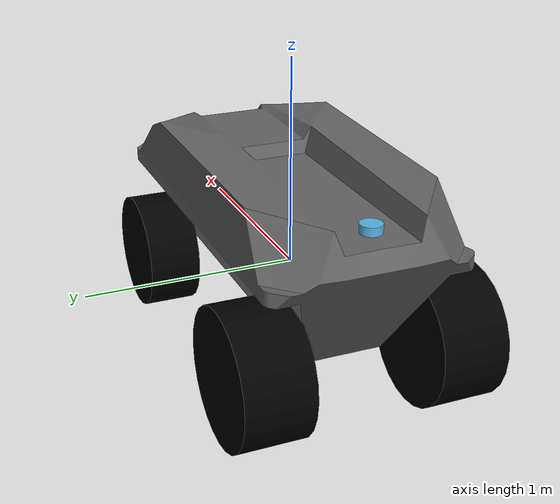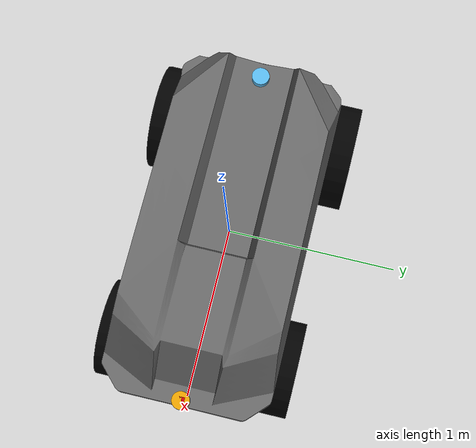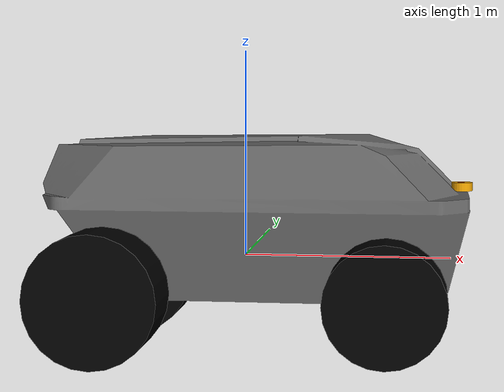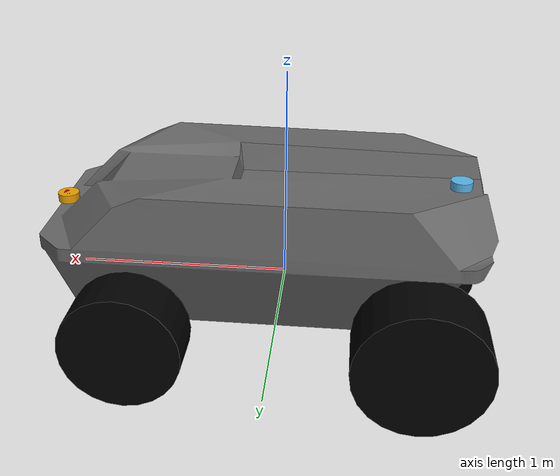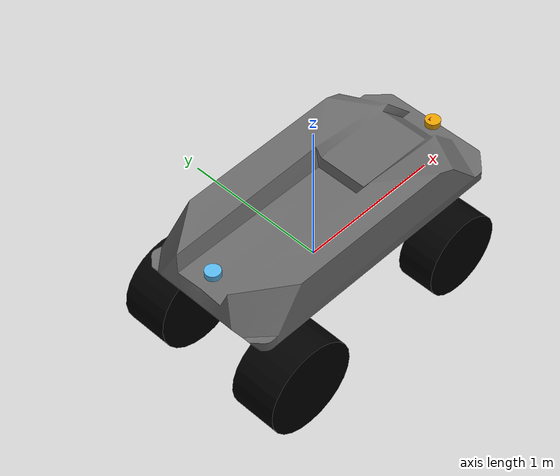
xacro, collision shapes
<?xml version="1.0"?>
<robot xmlns:xacro="http://www.ros.org/wiki/xacro" name="little_pig">

    <!-- Degree-to-radian conversions -->
    <xacro:property name="degrees_30" value="0.523598776"/>
    <xacro:property name="degrees_45" value="0.785398163"/>
    <xacro:property name="degrees_90" value="1.57079633"/>
    <xacro:property name="degrees_180" value="3.14159265"/>

    <!-- Included macros -->
    <xacro:include filename="$(find little_pig_description)/xacro/params/color_properties.xacro"/>
    <xacro:include filename="$(find little_pig_description)/xacro/params/characteristics.xacro"/>

    <xacro:include filename="$(find little_pig_description)/xacro/macros/_steering_macro.urdf.xacro" />
    <xacro:include filename="$(find little_pig_description)/xacro/macros/_front_wheel.urdf.xacro" />
    <xacro:include filename="$(find little_pig_description)/xacro/macros/_rear_wheel.urdf.xacro" />

    <!-- Using two laser files due to namespace issues -->
    <xacro:include filename="$(find little_pig_description)/xacro/macros/_front_laser.urdf.xacro" />
    <xacro:include filename="$(find little_pig_description)/xacro/macros/_back_laser.urdf.xacro" />
    <xacro:include filename="$(find little_pig_description)/xacro/macros/_imu.urdf.xacro" />
    <xacro:include filename="$(find little_pig_description)/xacro/macros/_camera.urdf.xacro" />

    <!-- Inertia Generator -->
    <xacro:macro name="default_inertial" params="mass">
        <inertial>
            <mass value="${mass}" />
            <inertia ixx="1.0" ixy="0.0" ixz="0.0" iyy="1.0" iyz="0.0" izz="1.0" />
        </inertial>
    </xacro:macro>

    <link name="base_link" />

    <link name="chassis">
        <visual>
            <geometry>
                <mesh filename="package://little_pig_description/meshes/little_pig_body.stl" scale="0.0254 0.0254 0.0254"/>
            </geometry>
            <origin rpy="0 0.0 1.57075" xyz="0 0 0.0"/>
            <material name="light_black"/>
        </visual>
        <collision>
            <origin xyz="0.0 0.0 0.0" rpy="0.0 0.0 1.57075"/>
            <geometry>
                <mesh filename="package://little_pig_description/meshes/little_pig_body.stl" scale="0.0254 0.0254 0.0254"/>
            </geometry>
        </collision>
        <xacro:default_inertial mass="${body_mass}"/>
    </link>

    <joint name="base_joint" type="fixed">
        <parent link="base_link"/>
        <child link="chassis"/>
        <origin xyz="0.0 0.0 0.0" rpy="0 0 0"/>
    </joint>

    <!-- Call macros to build components -->
    <xacro:steering_component prefix="left" reflect="1" />
    <xacro:steering_component prefix="right" reflect="-1" />

    <xacro:front_wheel prefix="left" reflect="1" />
    <xacro:front_wheel prefix="right" reflect="-1" />

    <xacro:rear_wheel prefix="left" reflect="1" />
    <xacro:rear_wheel prefix="right" reflect="-1" />

    <xacro:front_laser position="${front_laser_position}" rotate="0" />
    <xacro:back_laser position="${back_laser_position}" rotate="${degrees_180}" />
    <xacro:imu position="${imu_position}"/>
    <xacro:camera1 position="${camera_position}"/>

    <!-- Gazebo plugin for ROS Control -->
    <gazebo>
        <plugin name="gazebo_ros_control" filename="libgazebo_ros_control.so">
            <robotSimType>gazebo_ros_control/AckermannRobotHWSim</robotSimType>
        </plugin>

        <plugin name="gps_plugin" filename="libhector_gazebo_ros_gps.so">
            <alwaysOn>1</alwaysOn>
            <updateRate>40.0</updateRate>
            <frameId>base_link</frameId> <!-- Defaults to world? don't put in a "/"-->
            <bodyName>chassis</bodyName>
            <topicName>fix</topicName>
            <velocityTopicName>fix_vel</velocityTopicName>
            <drift>0.0001 0.0001 0.0001</drift>
            <referenceLatitude>37.634047</referenceLatitude>
            <referenceLongitude>-97.269368</referenceLongitude>
            <referenceHeading>0</referenceHeading>
            <referenceAltitude>0</referenceAltitude>
        </plugin>

    </gazebo>

</robot>

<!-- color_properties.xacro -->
<robot name="color_properties"
    xmlns:xacro="http://ros.org/wiki/xacro">

    <!-- Init color -->
    <material name="black">
        <color rgba="0.0 0.0 0.0 1.0"/>
    </material>

    <material name="dark">
        <color rgba="0.3 0.3 0.3 1.0"/>
    </material>
    <material name="light_black">
        <color rgba="0.4 0.4 0.4 1.0"/>
    </material>

    <material name="blue">
        <color rgba="0.0 0.0 0.8 1.0"/>
    </material>

    <material name="green">
        <color rgba="0.0 0.8 0.0 1.0"/>
    </material>

    <material name="grey">
        <color rgba="0.5 0.5 0.5 1.0"/>
    </material>

    <material name="orange">
        <color rgba="${255/255} ${108/255} ${10/255} 1.0"/>
    </material>

    <material name="brown">
        <color rgba="${222/255} ${207/255} ${195/255} 1.0"/>
    </material>

    <material name="red">
        <color rgba="0.8 0.0 0.0 1.0"/>
    </material>

    <material name="white">
        <color rgba="1.0 1.0 1.0 1.0"/>
    </material>
</robot>

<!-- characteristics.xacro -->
<robot name="characteristics"
    xmlns:xacro="http://ros.org/wiki/xacro">

    <!-- Basic Geometry of Body -->
    <xacro:property name="body_length" value="1.91" />
    <xacro:property name="body_width" value="0.680618" />
    <xacro:property name="body_height" value="1.065022" />
    <xacro:property name="body_mass" value="20.3"/>
    <!-- Front Wheel Properties -->
    <xacro:property name="front_wheel_width" value=".254" />
    <xacro:property name="front_wheel_diameter" value="0.572" />
    <xacro:property name="front_wheel_mass" value="20"/>

    <!-- Steering Link Properties -->
    <xacro:property name="steering_width" value="${front_wheel_width/4}" />
    <xacro:property name="steering_diameter" value="${front_wheel_diameter/5}" />
    <xacro:property name="steering_mass" value="2"/>

    <!-- Rear Wheel Properties -->
    <xacro:property name="rear_wheel_width" value="${front_wheel_width+steering_width}" />
    <xacro:property name="rear_wheel_diameter" value="0.635" />
    <xacro:property name="rear_wheel_mass" value="22.8"/>

    <!-- Steering Characteristics -->
    <!-- units of rad/s -->
    <xacro:property name="steering_speed" value="1.0472"/>
    <!-- units of rad, used to be 0.523 -->
    <xacro:property name="steering_max_angle" value="${degrees_30}"/>
    <!-- units of rad, used to be 0.523 -->
    <xacro:property name="steering_min_angle" value="-${degrees_30}"/>

    <xacro:property name="traverse_max_speed" value="4.785"/> <!-- units of m/s 4.785-->

    <!-- Module Properties (Positions relative to chassis) -->
    <xacro:property name="front_laser_position" value="1.05 0.0 0.35" />
    <xacro:property name="back_laser_position" value="-0.8 0.0 0.5" />
    <xacro:property name="imu_position" value="0 0 0.19"/>
    <xacro:property name="camera_position" value="1.05 0.0 0.35"/>

</robot>

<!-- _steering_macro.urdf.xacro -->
<robot name="steering_component"
    xmlns:xacro="http://ros.org/wiki/xacro">

    <xacro:macro name="steering_component" params="prefix reflect">

        <link name="${prefix}_steer_link">
            <visual>
                <geometry>
                    <cylinder radius="0.05" length="0.01"/>
                </geometry>
                <origin rpy="1.57075 0.0 0.0" xyz="0 0 0.0"/>
            </visual>
            <collision>
                <geometry>
                    <cylinder radius="0.05" length="0.01"/>
                </geometry>
                <origin rpy="1.57075 0.0 0.0" xyz="0 0 0.0"/>
            </collision>
            <xacro:default_inertial mass="${steering_mass}"/>
        </link>

        <joint name="${prefix}_steer_joint" type="revolute">
            <parent link="chassis"/>
            <child link="${prefix}_steer_link"/>
            <origin xyz="0.7 ${0.45 * reflect} -0.15" rpy="0.0 0.0 0.0"/>
            <axis xyz="0.0 0.0 0.1"/>
            <limit lower="${steering_min_angle}" upper="${steering_max_angle}" effort="30.00" velocity="${steering_speed}"/>
        </joint>

        <transmission name="${prefix}_steer_link_trans">
            <type>transmission_interface/SimpleTransmission</type>

            <joint name="${prefix}_steer_joint">
                <hardwareInterface>hardware_interface/PositionJointInterface</hardwareInterface>
            </joint>

            <actuator name="${prefix}_steer_link_motor">
                <hardwareInterface>hardware_interface/PositionJointInterface</hardwareInterface>
                <mechanicalReduction>1</mechanicalReduction>
            </actuator>
        </transmission>

    </xacro:macro>

</robot>

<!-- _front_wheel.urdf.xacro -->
<robot name="front_wheel"
    xmlns:xacro="http://ros.org/wiki/xacro">

    <xacro:macro name="front_wheel" params="prefix reflect">

        <link name="${prefix}_front_wheel">
            <visual>
                <geometry>
                    <mesh filename="package://little_pig_description/meshes/little_pig_wheel.stl" scale="0.0254 0.0254 0.0254"/>
                </geometry>
                <origin rpy="0.0 0.0 ${degrees_90 * reflect}" xyz="0 0 0.0"/>
                <material name="black"/>
            </visual>
            <collision>
                <origin xyz="0.0 0.0 0.0" rpy="${degrees_90 * reflect} 0.0 0.0"/>
                <geometry>
                    <cylinder radius="${front_wheel_diameter/2}" length="${front_wheel_width}"/>
                </geometry>
                <surface>
                    <friction>
                        <torsional>
                            <coefficient>2.0</coefficient>
                            <surface_radius>.3025</surface_radius>
                            <use_patch_radius>false</use_patch_radius>
                            <ode>
                                <slip>0.0</slip>
                            </ode>
                        </torsional>

                        <ode>
                            <mu>70000.00</mu>
                            <mu2>70000.00</mu2>
                            <fdir1>1.00000 0.00000 0.00000</fdir1>
                            <slip1>0.00000</slip1>
                            <slip2>0.00000</slip2>
                        </ode>
                    </friction>

                    <contact>
                        <ode>
                            <min_depth>0.4025</min_depth>
                        </ode>
                    </contact>
                </surface>
            </collision>
            <xacro:default_inertial mass="${front_wheel_mass}"/>
        </link>

        <joint name="${prefix}_front_wheel_joint" type="continuous">
            <parent link="${prefix}_steer_link"/>
            <child link="${prefix}_front_wheel"/>
            <origin xyz="0.0 0.0 0.0" rpy="0.0 0.0 0.0"/>
            <axis xyz="0.0 0.1 0.0"/>
            <limit effort="30.00" velocity="${traverse_max_speed * 2 / front_wheel_diameter}"/> <!-- units of rad/s -->
        </joint>

        <transmission name="${prefix}_front_wheel_trans">
            <type>transmission_interface/SimpleTransmission</type>

            <joint name="${prefix}_front_wheel_joint">
                <hardwareInterface>hardware_interface/VelocityJointInterface</hardwareInterface>
            </joint>

            <actuator name="${prefix}_front_wheel_motor">
                <hardwareInterface>hardware_interface/VelocityJointInterface</hardwareInterface>
                <mechanicalReduction>1</mechanicalReduction>
            </actuator>
        </transmission>

    </xacro:macro>

</robot>

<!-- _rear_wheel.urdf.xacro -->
<robot name="rear_wheel"
    xmlns:xacro="http://ros.org/wiki/xacro">

    <xacro:macro name="rear_wheel" params="prefix reflect">

        <link name="${prefix}_rear_wheel">
            <visual>
                <geometry>
                    <mesh filename="package://little_pig_description/meshes/little_pig_wheel.stl" scale="0.0254 0.0254 0.0254"/>
                </geometry>
                <origin rpy="0.0 0.0 ${degrees_90 * reflect}" xyz="0 0 0.0"/>
                <material name="black"/>
            </visual>
            <collision>
                <origin xyz="0.0 0.0 0.0" rpy="${degrees_90 * reflect} 0.0 0.0"/>
                <geometry>
                    <cylinder radius="${rear_wheel_diameter/2}" length="${rear_wheel_width}"/>
                </geometry>
            </collision>
            <surface>
                <contact>
                    <ode>
                        <min_depth>0.01</min_depth>
                    </ode>
                </contact>

                <friction>
                    <ode>
                        <mu>1</mu>
                        <mu2>1</mu2>
                        <fdir1>1.0 0 0</fdir1>
                    </ode>
                </friction>
            </surface>
            <xacro:default_inertial mass="${rear_wheel_mass}"/>
        </link>

        <joint name="${prefix}_rear_wheel_joint" type="continuous">
            <parent link="chassis"/>
            <child link="${prefix}_rear_wheel"/>
            <origin xyz="-0.65 ${0.45 * reflect} -0.15" rpy="0.0 0.0 0.0"/>
            <axis xyz="0.0 0.1 0.0"/>
        </joint>

        <transmission name="${prefix}_rear_wheel_trans">
            <type>transmission_interface/SimpleTransmission</type>

            <joint name="${prefix}_rear_wheel_joint">
                <!-- rolling axle -->
                <hardwareInterface>hardware_interface/EffortJointInterface</hardwareInterface>
            </joint>

            <actuator name="${prefix}_rear_wheel_motor">
                <!-- rolling axle -->
                <hardwareInterface>hardware_interface/EffortJointInterface</hardwareInterface>
                <mechanicalReduction>1</mechanicalReduction>
            </actuator>
        </transmission>

    </xacro:macro>

</robot>

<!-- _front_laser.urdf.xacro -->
<robot name="front_laser"
    xmlns:xacro="http://ros.org/wiki/xacro">

    <xacro:macro name="front_laser" params="position rotate">
        <!-- Laser link -->
        <joint name="laser_link_joint" type="fixed">
            <axis xyz="0 0 0" />
            <origin xyz="${position}" rpy="0 0 ${rotate}"/>
            <parent link="chassis"/>
            <child link="laser_link"/>
        </joint>

        <!-- Laser -->
        <link name="laser_link">
            <collision>
                <origin xyz="0 0 0" rpy="0 0 0"/>
                <geometry>
                    <cylinder radius=".05" length="0.04"/>
                </geometry>
            </collision>

            <visual>
                <origin xyz="0 0 0" rpy="0 0 0"/>
                <geometry>
                    <cylinder radius=".05" length="0.04"/>
                </geometry>
            </visual>

            <inertial>
                <mass value="1e-5" />
                <origin xyz="0 0 0" rpy="0 0 0"/>
                <inertia ixx="1e-6" ixy="0" ixz="0" iyy="1e-6" iyz="0" izz="1e-6" />
            </inertial>
        </link>

        <!-- Gazebo simulated laser -->
        <gazebo reference="laser_link">
            <sensor type="gpu_ray" name="head_hokuyo_sensor">
                <pose>0 0 0 0 0 0</pose>
                <visualize>true</visualize>
                <update_rate>10</update_rate>
                <ray>
                    <scan>
                        <horizontal>
                            <samples>360</samples>
                            <resolution>1</resolution>
                            <min_angle>-${degrees_90}</min_angle>
                            <max_angle>${degrees_90}</max_angle>
                        </horizontal>
                    </scan>
                    <range>
                        <min>0.10</min>
                        <max>20.0</max>
                        <resolution>0.05</resolution>
                    </range>
                    <noise>
                        <type>gaussian</type>
                        <mean>0.0</mean>
                        <stddev>0.01</stddev>
                    </noise>
                </ray>
                <plugin name="gazebo_ros_head_hokuyo_controller" filename="libgazebo_ros_gpu_laser.so">
                    <robotNamespace>front_laser</robotNamespace>
                    <topicName>scan</topicName>
                    <frameName>laser_link</frameName>
                </plugin>
            </sensor>
        </gazebo>

    </xacro:macro>

</robot>

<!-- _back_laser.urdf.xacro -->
<robot name="back_laser"
    xmlns:xacro="http://ros.org/wiki/xacro">

    <xacro:macro name="back_laser" params="position rotate">
        <!-- Back Laser link -->
        <joint name="laser_link_joint_back" type="fixed">
            <axis xyz="0 0 0" />
            <origin xyz="${position}" rpy="0 0 ${rotate}"/>
            <parent link="chassis"/>
            <child link="laser_link_back"/>
        </joint>

        <link name="laser_link_back">
            <collision>
                <origin xyz="0 0 0" rpy="0 0 0"/>
                <geometry>
                    <cylinder radius=".05" length="0.04"/>
                </geometry>
            </collision>

            <visual>
                <origin xyz="0 0 0" rpy="0 0 0"/>
                <geometry>
                    <cylinder radius=".05" length="0.04"/>
                </geometry>
            </visual>

            <inertial>
                <mass value="1e-5" />
                <origin xyz="0 0 0" rpy="0 0 0"/>
                <inertia ixx="1e-6" ixy="0" ixz="0" iyy="1e-6" iyz="0" izz="1e-6" />
            </inertial>
        </link>

        <!-- Gazebo simulated laser -->
        <gazebo reference="laser_link_back">
            <sensor type="gpu_ray" name="back_hokuyo_sensor">
                <pose>0 0 0 0 0 0</pose>
                <visualize>true</visualize>
                <update_rate>10</update_rate>
                <ray>
                    <scan>
                        <horizontal>
                            <samples>360</samples>
                            <resolution>1</resolution>
                            <min_angle>-${degrees_90}</min_angle>
                            <max_angle>${degrees_90}</max_angle>
                        </horizontal>
                    </scan>
                    <range>
                        <min>0.10</min>
                        <max>20.0</max>
                        <resolution>0.05</resolution>
                    </range>
                    <noise>
                        <type>gaussian</type>
                        <mean>0.0</mean>
                        <stddev>0.01</stddev>
                    </noise>
                </ray>
                <plugin name="gazebo_ros_head_hokuyo_controller" filename="libgazebo_ros_gpu_laser.so">
                    <robotNamespace>back_laser</robotNamespace>
                    <topicName>scan_back</topicName>
                    <frameName>laser_link_back</frameName>
                </plugin>
            </sensor>
        </gazebo>

    </xacro:macro>

</robot>

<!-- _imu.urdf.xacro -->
<robot name="imu"
    xmlns:xacro="http://ros.org/wiki/xacro">

    <xacro:macro name="imu" params="position">
        <joint name="imu_joint" type="fixed">
            <axis xyz="1 0 0 "/>
            <origin xyz="${position}"/>
            <parent link ="chassis"/>
            <child link ="imu_link"/>
        </joint>

        <link name="imu_link">
            <inertial>
                <mass value="0.001"/>
                <origin rpy="0 0 0" xyz="0 0 0"/>
                <inertia ixx="0.0001" ixy="0" ixz="0" iyy="0.000001" iyz="0" izz="0.0001"/>
            </inertial>

            <visual>
                <origin rpy="0 0 0" xyz="0 0 0"/>
                <geometry>
                <box size="0.001 0.001 0.001"/>
                </geometry>
            </visual>

            <collision>
                <origin rpy="0 0 0" xyz="0 0 0"/>
                <geometry>
                <box size=".001 .001 .001"/>
                </geometry>
            </collision>
	    </link>

        <gazebo>
            <plugin name="imu_plugin" filename="libhector_gazebo_ros_imu.so">
                <alwaysOn>true</alwaysOn>
                <bodyName>imu_link</bodyName>
                <topicName>imu/data</topicName> <!-- Lets solve the namepsace issues -->
                <accelDrift>0.005 0.005 0.005</accelDrift>
                <accelGaussianNoise>0.005 0.005 0.005</accelGaussianNoise>
                <rateDrift>0.005 0.005 0.005</rateDrift>
                <rateGaussianNoise>0.005 0.005 0.005</rateGaussianNoise>
                <headingDrift>0.005 0.005 0.005</headingDrift>
                <gaussianNoise>0.0</gaussianNoise>
                <updateRate>50.0</updateRate>
                <xyzOffsets>0 0 0</xyzOffsets>
                <rpyOffsets>0 0 0</rpyOffsets>
            </plugin>
        </gazebo>

    </xacro:macro>

</robot>

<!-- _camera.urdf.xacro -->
<robot name="camera1"
    xmlns:xacro="http://ros.org/wiki/xacro">

    <xacro:macro name="camera1" params="position">
        <joint name="camera_link_joint" type="fixed">
            <axis xyz="0 1 0" />
            <origin xyz="${position}" rpy="0 0 0"/>
            <parent link="chassis"/>
            <child link="camera_link"/>
        </joint>

        <link name="camera_link">
            <collision>
                <origin xyz="0 0 0" rpy="0 0 0"/>
                <geometry>
                <box size="0.04 0.04 0.04"/>
                </geometry>
            </collision>

            <visual>
                <origin xyz="0 0 0" rpy="0 0 0"/>
                <geometry>
                <box size="0.04 0.04 0.04"/>
                </geometry>
                <material name="red"/>
            </visual>

            <inertial>
                <mass value="1e-5" />
                <origin xyz="0 0 0" rpy="0 0 0"/>
                <inertia ixx="1e-6" ixy="0" ixz="0" iyy="1e-6" iyz="0" izz="1e-6" />
            </inertial>
        </link>

        <gazebo reference="camera_link">
            <sensor type="camera" name="camera1">
                <update_rate>30.0</update_rate>
                <camera name="head">
                    <horizontal_fov>1.3962634</horizontal_fov>
                    <image>
                        <width>800</width>
                        <height>800</height>
                        <format>R8G8B8</format>
                    </image>
                    <clip>
                        <near>0.02</near>
                        <far>300</far>
                    </clip>
                    <noise>
                        <type>gaussian</type>
                        <mean>0.0</mean>
                        <stddev>0.007</stddev>
                    </noise>
                </camera>
                <plugin name="camera_controller" filename="libgazebo_ros_camera.so">
                    <alwaysOn>true</alwaysOn>
                    <updateRate>0.0</updateRate>
                    <cameraName>camera1</cameraName>
                    <imageTopicName>image_raw</imageTopicName>
                    <cameraInfoTopicName>camera_info</cameraInfoTopicName>
                    <frameName>camera_link</frameName>
                    <hackBaseline>0.07</hackBaseline>
                    <distortionK1>0.0</distortionK1>
                    <distortionK2>0.0</distortionK2>
                    <distortionK3>0.0</distortionK3>
                    <distortionT1>0.0</distortionT1>
                    <distortionT2>0.0</distortionT2>
                </plugin>
            </sensor>
        </gazebo>

    </xacro:macro>

</robot>
